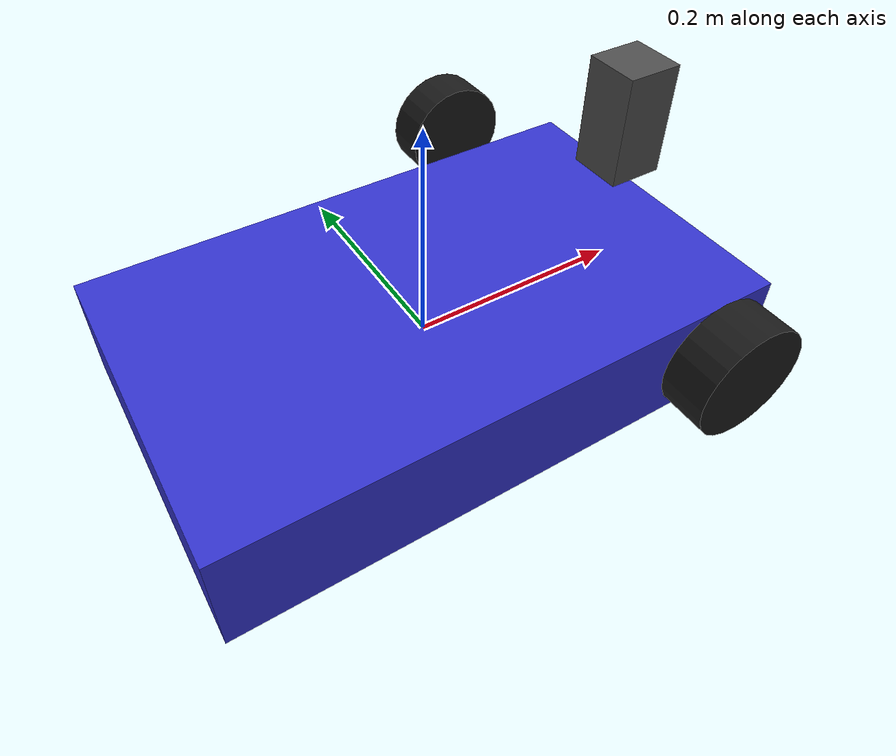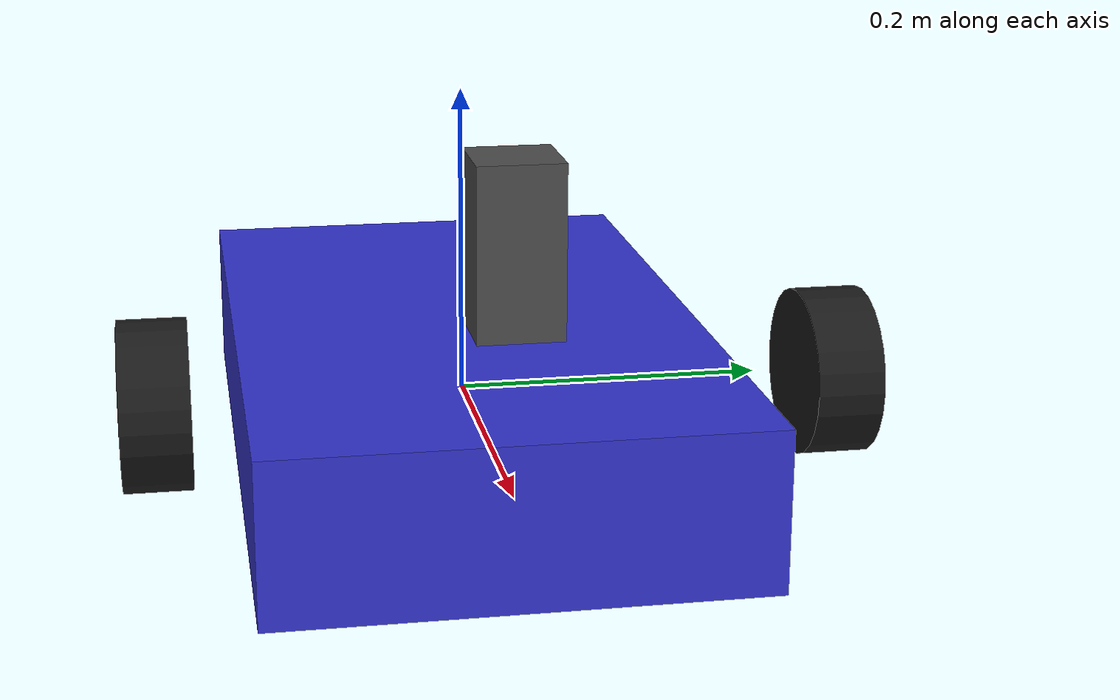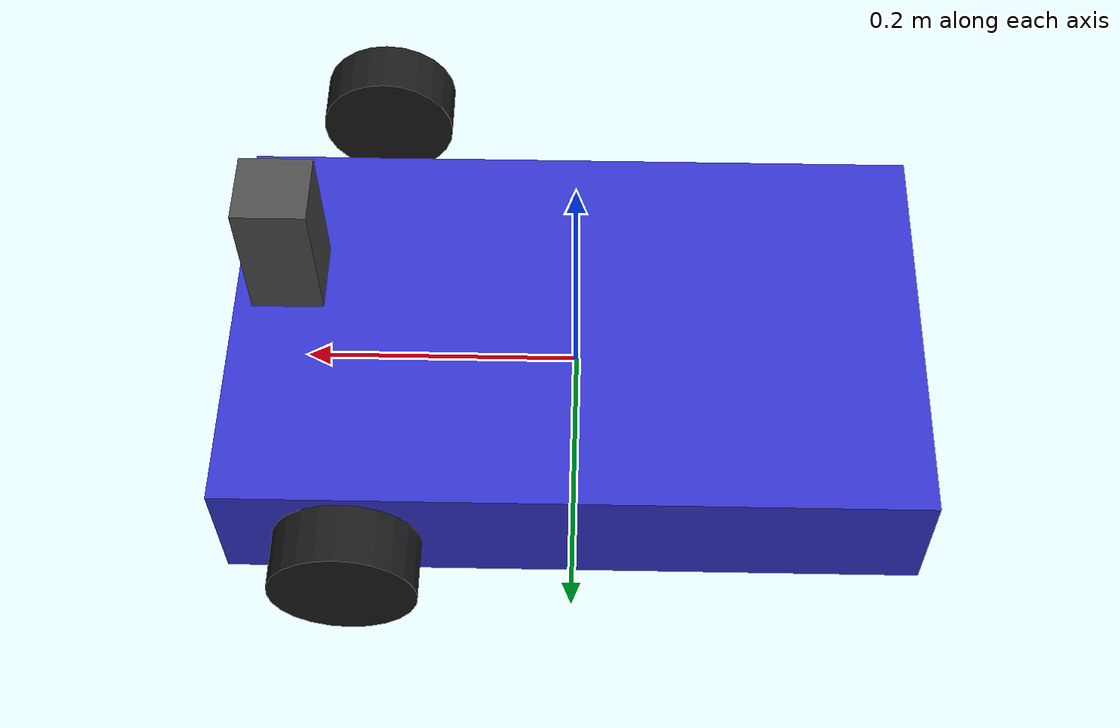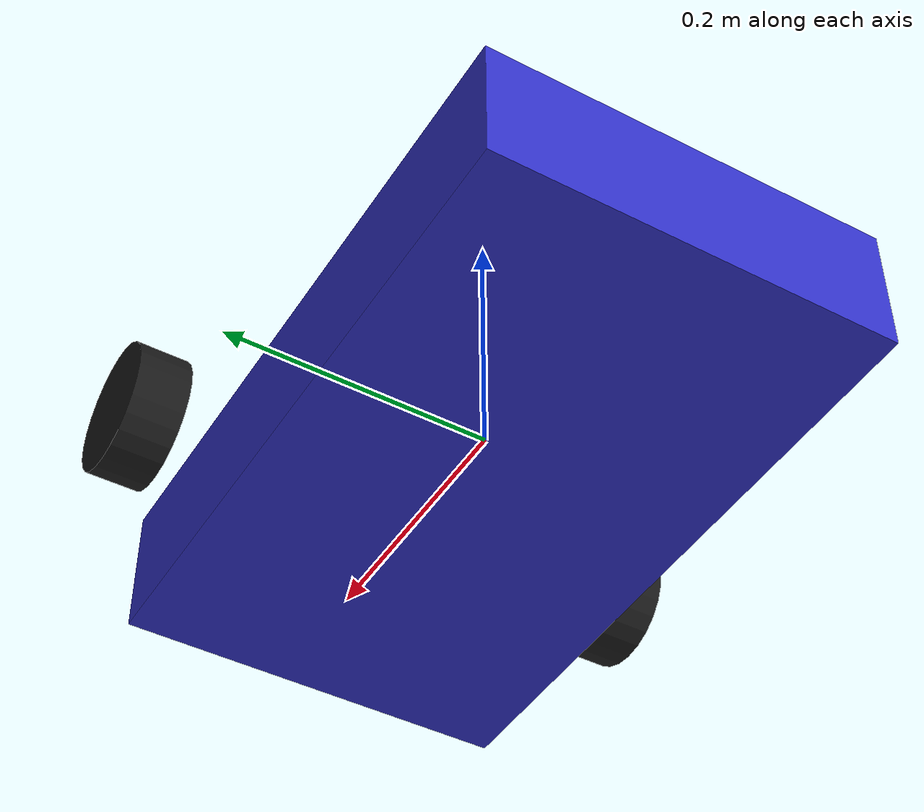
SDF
<?xml version="1.0" ?>
<sdf version="1.6">
  <model name="helios">
    <static>false</static>

    <!-- Base Link -->
    <link name="base_link">
      <inertial>
        <mass>5.0</mass>
        <inertia>
          <ixx>0.1</ixx>
          <ixy>0</ixy>
          <ixz>0</ixz>
          <iyy>0.1</iyy>
          <iyz>0</iyz>
          <izz>0.1</izz>
        </inertia>
        <pose>0 0 0.1 0 0 0</pose>
      </inertial>

      <collision name="base_collision">
        <geometry>
          <box>
            <size>0.5 0.3 0.1</size>
          </box>
        </geometry>
      </collision>

      <visual name="base_visual">
        <geometry>
          <box>
            <size>0.5 0.3 0.1</size>
          </box>
        </geometry>
        <material>
          <ambient>0.1 0.1 0.1 1</ambient>
          <diffuse>0.2 0.2 0.8 1</diffuse>
          <specular>0 0 0 1</specular>
          <emissive>0 0 0 1</emissive>
        </material>
      </visual>

      <sensor name="imu_sensor" type="imu">
        <pose>0 0 0 0 0 0</pose>
        <always_on>1</always_on>
        <update_rate>100</update_rate>
      </sensor>
    </link>

    <!-- Left Wheel -->
    <link name="left_wheel">
      <pose>0.15 0.2 0.05 -1.5707 0 0</pose>
      <inertial>
        <mass>0.5</mass>
        <inertia>
          <ixx>0.001</ixx>
          <ixy>0</ixy>
          <ixz>0</ixz>
          <iyy>0.001</iyy>
          <iyz>0</iyz>
          <izz>0.001</izz>
        </inertia>
      </inertial>

      <collision name="left_wheel_collision">
        <geometry>
          <cylinder>
            <radius>0.05</radius>
            <length>0.04</length>
          </cylinder>
        </geometry>
      </collision>

      <visual name="left_wheel_visual">
        <geometry>
          <cylinder>
            <radius>0.05</radius>
            <length>0.04</length>
          </cylinder>
        </geometry>
        <material>
          <ambient>0.1 0.1 0.1 1</ambient>
          <diffuse>0.1 0.1 0.1 1</diffuse>
          <specular>0 0 0 1</specular>
          <emissive>0 0 0 1</emissive>
        </material>
      </visual>
    </link>

    <!-- Right Wheel -->
    <link name="right_wheel">
      <pose>0.15 -0.2 0.05 -1.5707 0 0</pose>
      <inertial>
        <mass>0.5</mass>
        <inertia>
          <ixx>0.001</ixx>
          <ixy>0</ixy>
          <ixz>0</ixz>
          <iyy>0.001</iyy>
          <iyz>0</iyz>
          <izz>0.001</izz>
        </inertia>
      </inertial>

      <collision name="right_wheel_collision">
        <geometry>
          <cylinder>
            <radius>0.05</radius>
            <length>0.04</length>
          </cylinder>
        </geometry>
      </collision>

      <visual name="right_wheel_visual">
        <geometry>
          <cylinder>
            <radius>0.05</radius>
            <length>0.04</length>
          </cylinder>
        </geometry>
        <material>
          <ambient>0.1 0.1 0.1 1</ambient>
          <diffuse>0.1 0.1 0.1 1</diffuse>
          <specular>0 0 0 1</specular>
          <emissive>0 0 0 1</emissive>
        </material>
      </visual>
    </link>

    <!-- Caster Wheel -->
    <link name="caster">
      <pose>-0.15 0 0.025 0 0 0</pose>
      <inertial>
        <mass>0.1</mass>
        <inertia>
          <ixx>0.0001</ixx>
          <ixy>0</ixy>
          <ixz>0</ixz>
          <iyy>0.0001</iyy>
          <iyz>0</iyz>
          <izz>0.0001</izz>
        </inertia>
      </inertial>

      <collision name="caster_collision">
        <geometry>
          <sphere>
            <radius>0.025</radius>
          </sphere>
        </geometry>
        <surface>
          <friction>
            <ode>
              <mu>0.01</mu>
              <mu2>0.01</mu2>
            </ode>
          </friction>
        </surface>
      </collision>

      <visual name="caster_visual">
        <geometry>
          <sphere>
            <radius>0.025</radius>
          </sphere>
        </geometry>
        <material>
          <ambient>0.1 0.1 0.1 1</ambient>
          <diffuse>0.1 0.1 0.1 1</diffuse>
          <specular>0 0 0 1</specular>
          <emissive>0 0 0 1</emissive>
        </material>
      </visual>
    </link>

    <!-- Add a simple sensor mount -->
    <link name="sensor_mount">
      <pose>0.2 0 0.15 0 0 0</pose>
      <inertial>
        <mass>0.1</mass>
        <inertia>
          <ixx>0.0001</ixx>
          <ixy>0</ixy>
          <ixz>0</ixz>
          <iyy>0.0001</iyy>
          <iyz>0</iyz>
          <izz>0.0001</izz>
        </inertia>
      </inertial>

      <collision name="sensor_mount_collision">
        <geometry>
          <box>
            <size>0.05 0.05 0.1</size>
          </box>
        </geometry>
      </collision>

      <visual name="sensor_mount_visual">
        <geometry>
          <box>
            <size>0.05 0.05 0.1</size>
          </box>
        </geometry>
        <material>
          <ambient>0.1 0.1 0.1 1</ambient>
          <diffuse>0.3 0.3 0.3 1</diffuse>
          <specular>0 0 0 1</specular>
          <emissive>0 0 0 1</emissive>
        </material>
      </visual>
    </link>

    <!-- Joints -->
    <!-- Left wheel joint -->
    <joint name="left_wheel_joint" type="revolute">
      <parent>base_link</parent>
      <child>left_wheel</child>
      <axis>
        <xyz>0 0 1</xyz>
        <limit>
          <effort>10</effort>
          <velocity>10</velocity>
        </limit>
      </axis>
    </joint>

    <!-- Right wheel joint -->
    <joint name="right_wheel_joint" type="revolute">
      <parent>base_link</parent>
      <child>right_wheel</child>
      <axis>
        <xyz>0 0 1</xyz>
        <limit>
          <effort>10</effort>
          <velocity>10</velocity>
        </limit>
      </axis>
    </joint>

    <!-- Caster joint -->
    <joint name="caster_joint" type="ball">
      <parent>base_link</parent>
      <child>caster</child>
    </joint>

    <!-- Sensor mount joint -->
    <joint name="sensor_mount_joint" type="fixed">
      <parent>base_link</parent>
      <child>sensor_mount</child>
    </joint>

    <!-- Add Differential Drive Plugin -->
    <plugin name="differential_drive_controller" filename="libgazebo_ros_diff_drive.so">
      <update_rate>100</update_rate>
      <left_joint>left_wheel_joint</left_joint>
      <right_joint>right_wheel_joint</right_joint>
      <wheel_separation>0.4</wheel_separation>
      <wheel_diameter>0.1</wheel_diameter>
      <max_wheel_torque>10</max_wheel_torque>
      <max_wheel_acceleration>1.0</max_wheel_acceleration>
      <command_topic>cmd_vel</command_topic>
      <publish_odom>true</publish_odom>
      <publish_odom_tf>true</publish_odom_tf>
      <publish_wheel_tf>true</publish_wheel_tf>
      <odometry_topic>odom</odometry_topic>
      <odometry_frame>odom</odometry_frame>
      <robot_base_frame>base_link</robot_base_frame>
    </plugin>

    <!-- IMU Plugin -->
    <plugin name="imu_plugin" filename="libgazebo_ros_imu.so">
      <alwaysOn>true</alwaysOn>
      <bodyName>base_link</bodyName>
      <topicName>imu</topicName>
      <serviceName>imu_service</serviceName>
      <gaussianNoise>0.0</gaussianNoise>
      <updateRate>50.0</updateRate>
    </plugin>
  </model>
</sdf>
